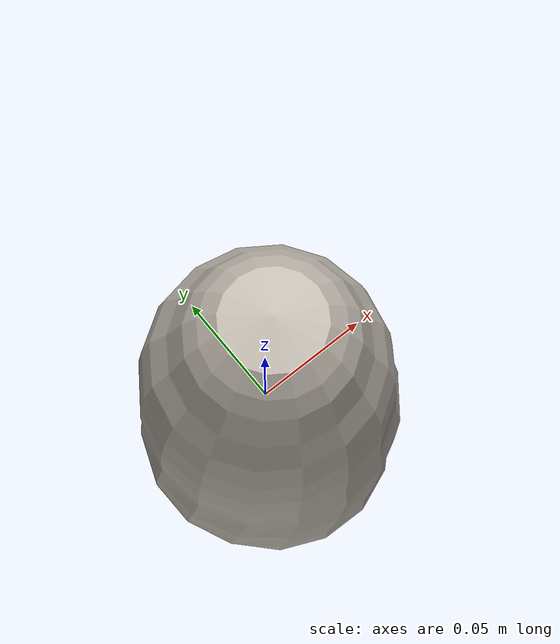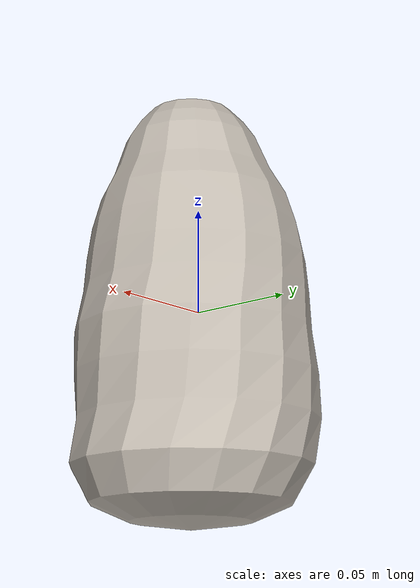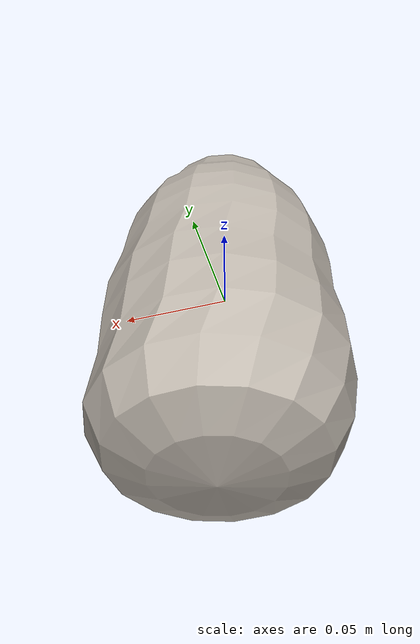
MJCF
<mujoco model="Lettuce_16">
  <compiler autolimits="true" boundmass="0.01" angle="radian"/>
  <default>
    <default class="/">
      <default class="__VISUAL_MJT__">
        <geom contype="0" conaffinity="0" group="0"/>
      </default>
      <default class="__STRUCTURAL_MJT__">
        <geom contype="8" conaffinity="15" group="4" friction="0.90000000000000002 0.90000000000000002 0.001" solref="0.025000000000000001 1" solimp="0.998 0.998 0.001"/>
      </default>
      <default class="__DYNAMIC_MJT__">
        <geom contype="1" conaffinity="15" group="4" friction="0.90000000000000002 0.90000000000000002 0.001" solref="0.025000000000000001 1" solimp="0.998 0.998 0.001"/>
      </default>
    </default>
  </default>
  <asset>
    <texture name="Lettuce2_Mat" type="2d" file="Lettuce2_AlbedoTransparency.png"/>
    <material name="material_Lettuce2_Mat" class="/" texture="Lettuce2_Mat" specular="0.5" shininess="0.5" rgba="1 1 1 1"/>
    <mesh name="Lettuce_16_lettuce_b6" class="/" file="Lettuce_16_lettuce_b6/Lettuce_16_lettuce_b6.obj" scale="1 1 1"/>
  </asset>
  <worldbody>
    <body name="Lettuce_16">
      <joint name="Lettuce_16_free" class="/" type="free" pos="0 0 0" axis="0 0 1" stiffness="0" range="0 0" armature="0" damping="0.10000000000000001" frictionloss="0"/>
      <body name="Lettuce_16_lettuce_b6" pos="0.0019 -0.00076000000000000004 0.0069199999999999999" quat="1 0 0 0">
        <geom name="Lettuce_16_lettuce_b6" class="__VISUAL_MJT__" type="mesh" material="material_Lettuce2_Mat" shellinertia="true" mesh="Lettuce_16_lettuce_b6"/>
        <geom name="Lettuce_16_PrimitiveCollider_0" class="__DYNAMIC_MJT__" type="capsule" size="0.058322455734014511 0.016478035598993301" rgba="0 1 0 1" pos="0.0019030570983886719 0.00075858226045966148 -0.040026672184467316" quat="0.99999999999891198 1.4751396607739272e-06 0 0"/>
        <geom name="Lettuce_16_PrimitiveCollider_1" class="__DYNAMIC_MJT__" type="capsule" size="0.03641587495803833 0.02329939603805542" rgba="0 1 0 1" pos="0.00031393673270940781 -0.0031276866793632507 0.041278377175331116" quat="0.99999999999891198 1.4751396607739272e-06 0 0"/>
        <geom name="Lettuce_16_PrimitiveCollider_2" class="__DYNAMIC_MJT__" type="capsule" size="0.050834640860557556 0.012388631701469421" rgba="0 1 0 1" pos="0.0011237664148211479 -0.00046185450628399849 0.014189943671226501" quat="0.99999999999891198 1.4751396607739272e-06 0 0"/>
      </body>
    </body>
  </worldbody>
</mujoco>
